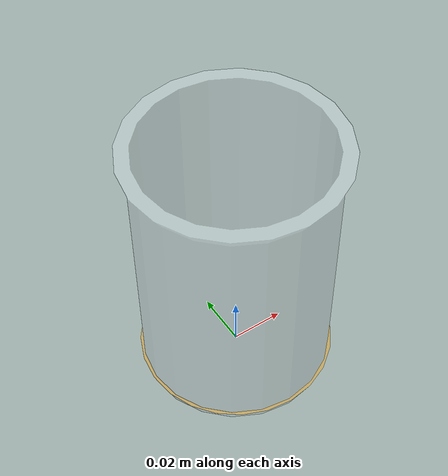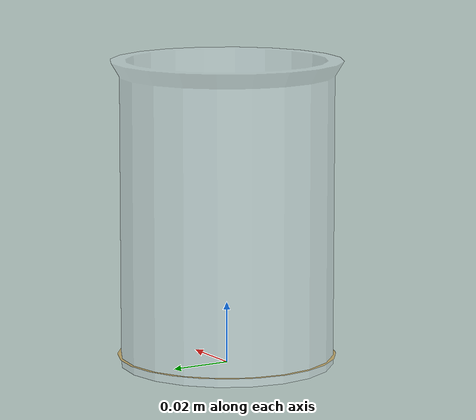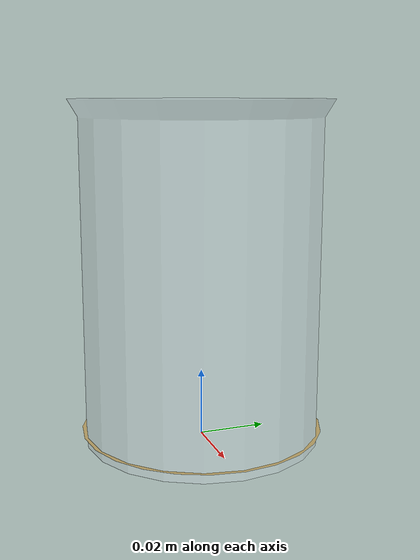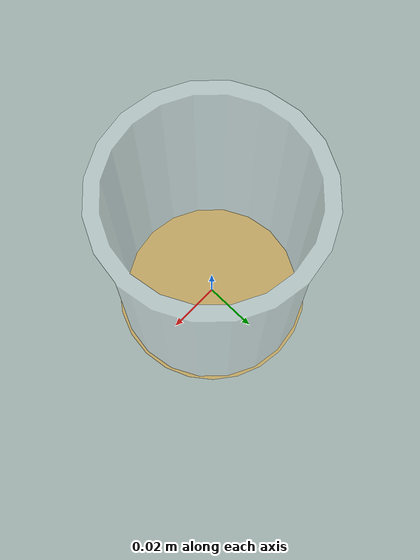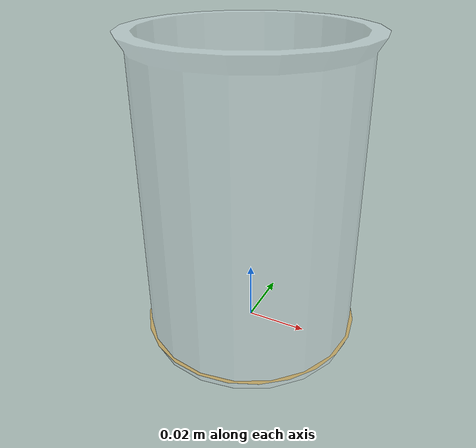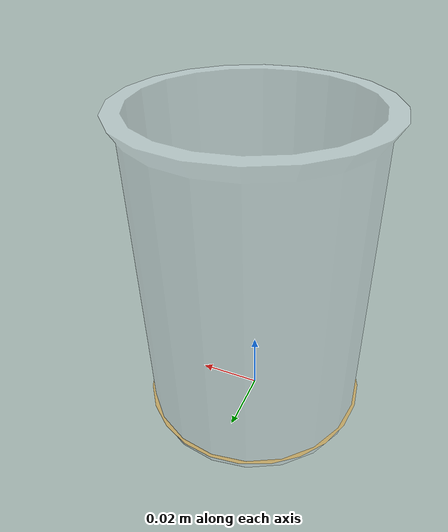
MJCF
<?xml version="1.0" encoding="utf-8"?>
<!-- Generated by scripts/generate_beaker.py; do not edit by hand. -->
<mujoco model="beaker">
  <asset>
    <mesh name="beaker" file="../lab_room/meshes/beaker.obj" inertia="shell"/>
    <material name="glass_clear" rgba="0.88 0.94 0.97 0.30" specular="0.9" shininess="0.95"/>
    <material name="contents" rgba="0.86 0.62 0.18 0.55"/>
  </asset>
  <worldbody>
    <body name="beaker">
      <inertial pos="0 0 0.0350" mass="0.085"
                diaginertia="8e-5 8e-5 6e-5"/>
      <geom name="glass" type="mesh" mesh="beaker" material="glass_clear"
            contype="0" conaffinity="0" mass="0"/>
      <geom name="shell" type="cylinder" pos="0 0 0.0500"
            size="0.0380 0.0500" rgba="0 0 0 0" mass="0"/>
      <geom name="liquid" type="cylinder" pos="0 0 0.0030"
            size="0.0360 0.00001" material="contents"
            contype="0" conaffinity="0" mass="0"/>
      <site name="mouth" pos="0 0 0.1000" type="cylinder"
            size="0.0360 0.001" rgba="0.2 0.7 0.9 0.25" group="4"/>
    </body>
  </worldbody>
</mujoco>
